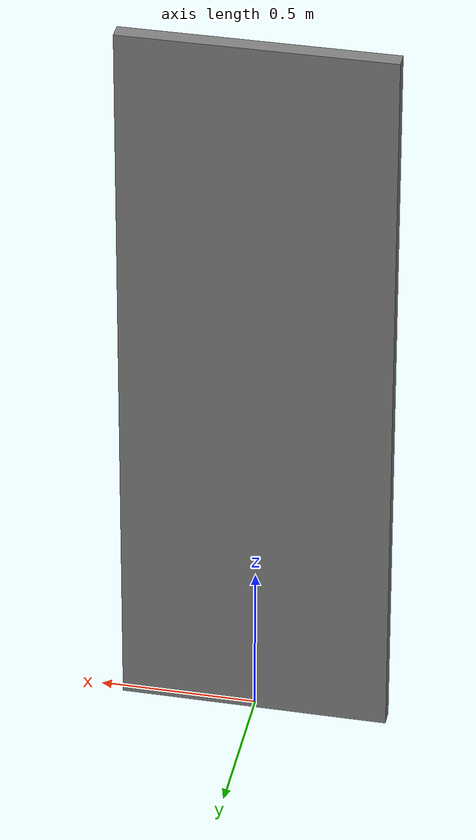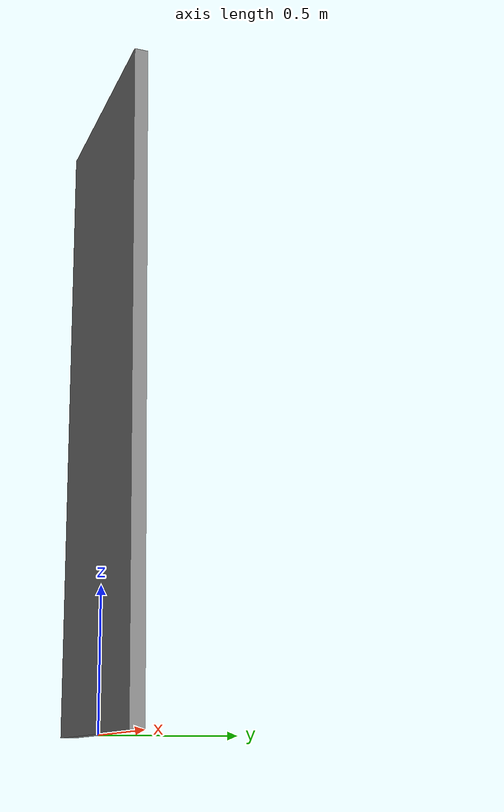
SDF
<?xml version="1.0" ?>
<sdf version="1.6">
  <model name="door">

    <static>true</static>

    <link name="door_link">

      <!-- Place the door so its bottom face rests on the ground (z = half height) -->
      <pose>0 0 1.2065 0 0 0</pose>

      <inertial>
        <mass>25.0</mass>
        <inertia>
          <!-- Inertia tensor for a solid box: -->
          <!-- Ixx = (1/12) * m * (h^2 + d^2) -->
          <!-- Iyy = (1/12) * m * (w^2 + d^2) -->
          <!-- Izz = (1/12) * m * (w^2 + h^2) -->
          <ixx>1.1687</ixx>
          <ixy>0</ixy>
          <ixz>0</ixz>
          <iyy>0.1458</iyy>
          <iyz>0</iyz>
          <izz>1.0236</izz>
        </inertia>
      </inertial>

      <!-- Collision shape -->
      <collision name="door_collision">
        <geometry>
          <box>
            <!-- Dimensions in meters:
                 Height : 7ft 11in   = 2.4130 m
                 Length : 2ft 9.75in = 0.8509 m
                 Width  : 2in        = 0.0508 m -->
            <size>0.8509 0.0508 2.4130</size>
          </box>
        </geometry>
        <surface>
          <friction>
            <ode>
              <mu>0.6</mu>
              <mu2>0.6</mu2>
            </ode>
          </friction>
          <contact>
            <ode>
              <kp>1e6</kp>
              <kd>1.0</kd>
            </ode>
          </contact>
        </surface>
      </collision>

      <!-- Visual shape -->
      <visual name="door_visual">
        <geometry>
          <box>
            <size>0.8509 0.0508 2.4130</size>
          </box>
        </geometry>
        <material>
          <ambient>0.5 0.5 0.5 1.0</ambient>
          <diffuse>0.5 0.5 0.5 1.0</diffuse>
          <specular>0.2 0.2 0.2 1.0</specular>
          <emissive>0 0 0 1.0</emissive>
        </material>
      </visual>

    </link>

  </model>
</sdf>
